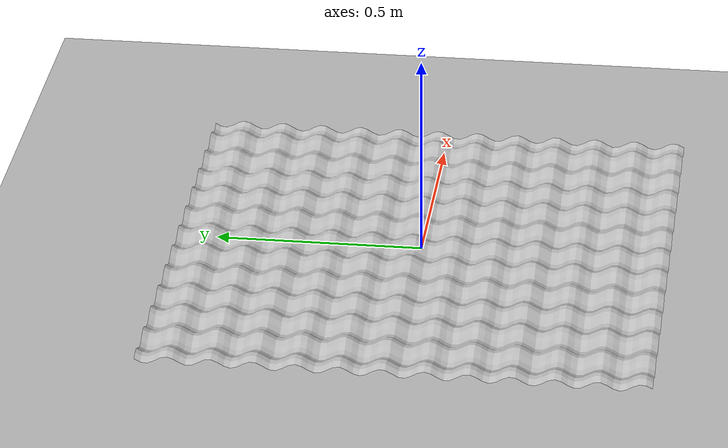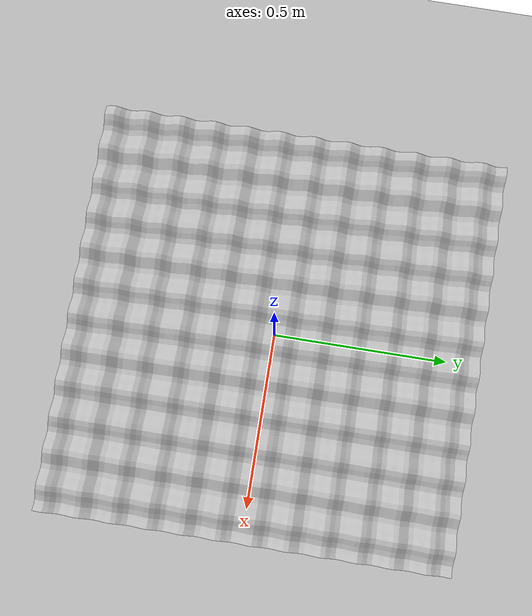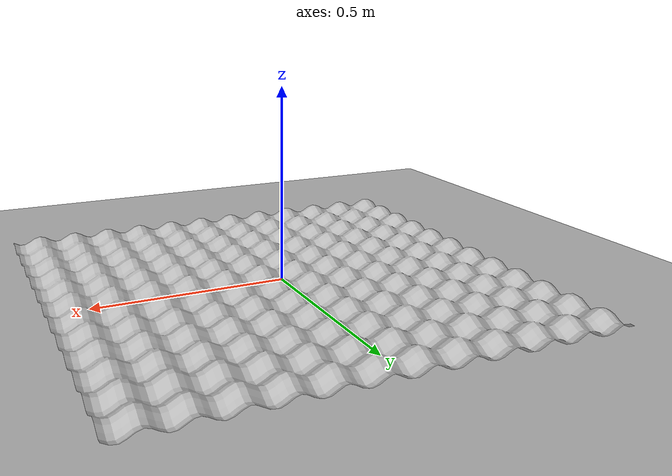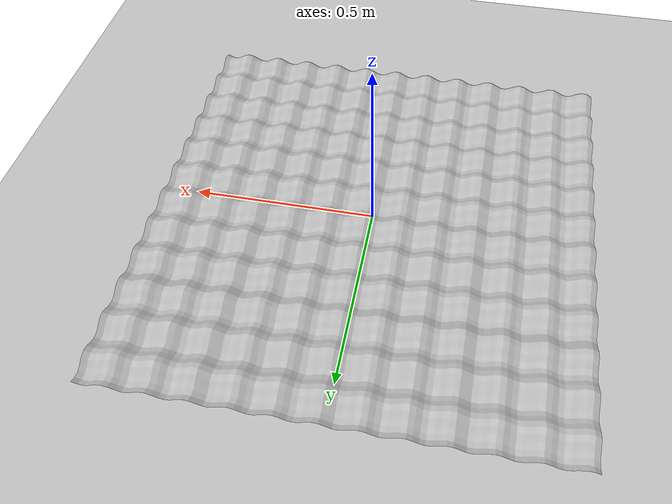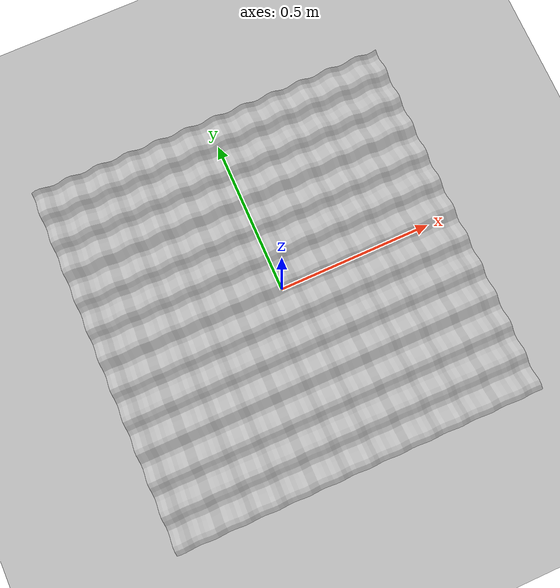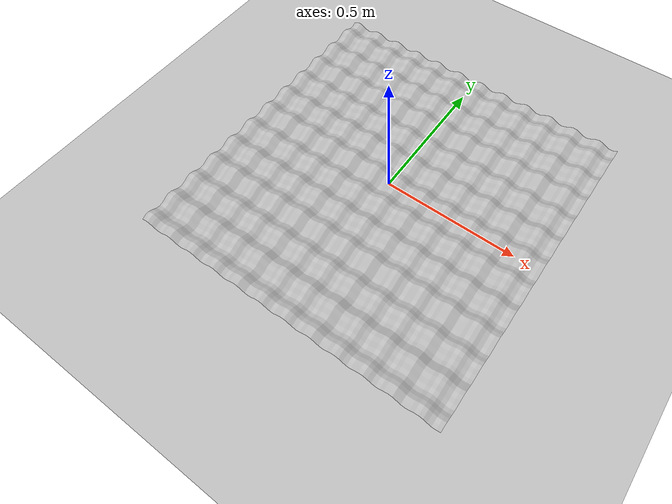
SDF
<?xml version="1.0" ?>
<sdf version="1.6">
  <world name="default">

    <gui fullscreen="0">
      <camera name="user_camera">
        <pose>0.9 -0.9 0.7 0 0.45 2.35619</pose>
        <view_controller>orbit</view_controller>
        <projection_type>perspective</projection_type>
      </camera>
    </gui>

    <gravity>0 0 -3.71</gravity>

    <!-- ================= FÍSICA (estable para objeto ligero) ================= -->
    <physics type="ode">
      <max_step_size>0.003</max_step_size>
      <real_time_update_rate>333</real_time_update_rate>
      <real_time_factor>1</real_time_factor>
      <ode>
        <solver>
          <type>quick</type>
          <iters>150</iters>
          <sor>1.3</sor>
        </solver>
        <constraints>
          <cfm>0.0</cfm>
          <erp>0.2</erp>
          <contact_max_correcting_vel>100</contact_max_correcting_vel>
          <contact_surface_layer>0.001</contact_surface_layer>
        </constraints>
      </ode>
    </physics>

    <!-- ================= ESCENA (sin sombras) ================= -->
    <scene>
      <ambient>0.5 0.5 0.5 1</ambient>
      <background>0.86 0.60 0.45 1</background>
      <shadows>0</shadows>
      <grid>0</grid>
    </scene>

    <light name="sun" type="directional">
      <cast_shadows>0</cast_shadows>
      <pose>0 0 10 0 0 0</pose>
      <diffuse>0.9 0.85 0.8 1</diffuse>
      <specular>0.1 0.1 0.1 1</specular>
      <direction>-0.5 0.1 -0.9</direction>
    </light>

    <!-- ============ SUELO MARS DE FONDO (rellena el campo de visión) ============ -->
    <model name="mars_ground">
      <static>1</static>
      <pose>0 0 -0.021 0 0 0</pose>
      <link name="link">
        <visual name="visual">
          <cast_shadows>0</cast_shadows>
          <geometry><mesh><uri>mars_ground.obj</uri></mesh></geometry>
        </visual>
        <collision name="collision">
          <geometry><plane><normal>0 0 1</normal><size>6 6</size></plane></geometry>
          <surface>
            <friction><ode><mu>100</mu><mu2>100</mu2></ode></friction>
            <contact><ode><kp>1e6</kp><kd>1e2</kd></ode></contact>
          </surface>
        </collision>
      </link>
    </model>

    <!-- ================= TERRENO EGG-CRATE (visual + colisión) ================= -->
    <model name="mars_bumpy_terrain">
      <static>1</static>
      <link name="body">
        <visual name="visual">
          <cast_shadows>0</cast_shadows>
          <geometry>
            <mesh><uri>mars_bumpy.obj</uri></mesh>
          </geometry>
        </visual>
        <collision name="collision">
          <geometry>
            <mesh><uri>mars_bumpy.obj</uri></mesh>
          </geometry>
          <max_contacts>10</max_contacts>
          <surface>
            <friction><ode><mu>100</mu><mu2>100</mu2></ode></friction>
            <contact><ode><kp>1e6</kp><kd>1e2</kd><min_depth>0.0</min_depth><max_vel>0.1</max_vel></ode></contact>
          </surface>
        </collision>
      </link>
    </model>

    <!-- Plugin de estado: expone /get_entity_state y /set_entity_state -->
    <plugin name="gazebo_ros_state" filename="libgazebo_ros_state.so">
      <ros><namespace>/</namespace></ros>
      <update_rate>10</update_rate>
    </plugin>

  </world>
</sdf>
